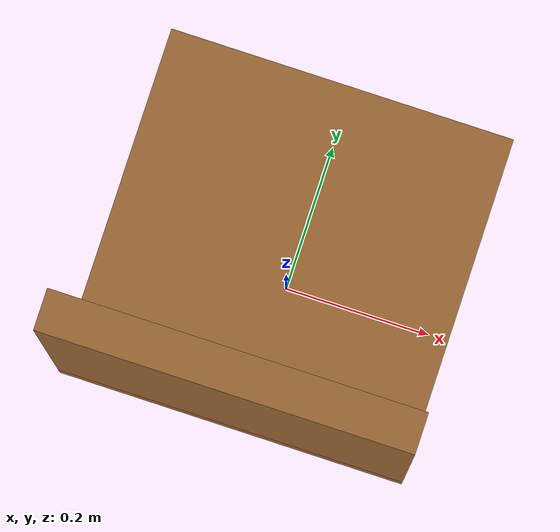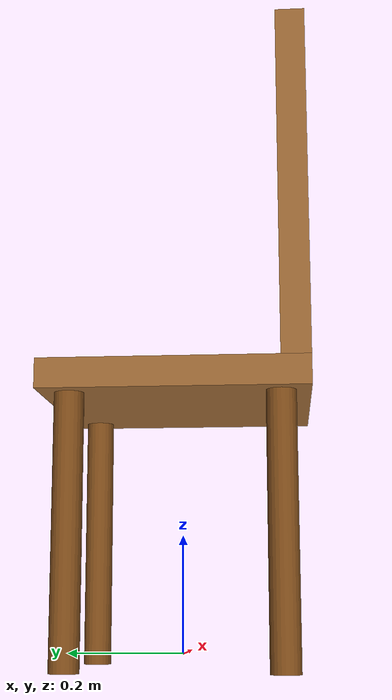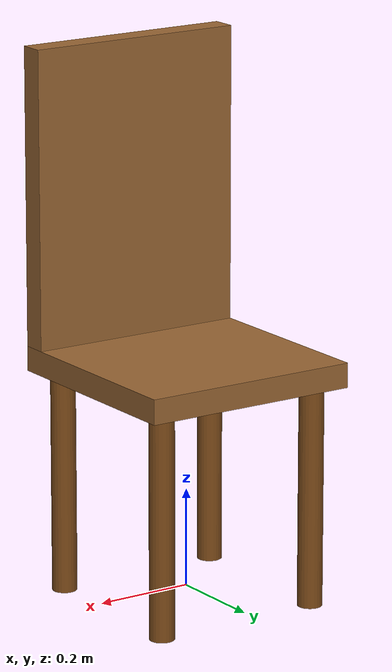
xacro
<?xml version="1.0"?>
<robot xmlns:xacro="http://www.ros.org/wiki/xacro" name="chair">

  <!-- CHANGE ONLY THIS VALUE TO SCALE ENTIRE CHAIR! -->
  <xacro:arg name="scale" default="1.0"/>
  <xacro:property name="scale" value="$(arg scale)"/>

  <!-- Base dimensions that will be scaled -->
  <xacro:property name="base_seat_size" value="0.45"/>
  <xacro:property name="base_seat_height" value="0.45"/>
  <xacro:property name="base_seat_thickness" value="0.05"/>
  <xacro:property name="base_backrest_width" value="0.45"/>
  <xacro:property name="base_backrest_height" value="0.6"/>
  <xacro:property name="base_backrest_thickness" value="0.05"/>
  <xacro:property name="base_backrest_offset" value="-0.2"/>
  <xacro:property name="base_backrest_center_height" value="0.75"/>
  <xacro:property name="base_leg_radius" value="0.025"/>
  <xacro:property name="base_leg_length" value="0.45"/>
  <xacro:property name="base_leg_offset" value="0.175"/>
  <xacro:property name="base_leg_center_height" value="0.225"/>
  <xacro:property name="base_seat_mass" value="5.0"/>
  <xacro:property name="base_backrest_mass" value="3.0"/>
  <xacro:property name="base_leg_mass" value="1.0"/>

  <!-- Calculated scaled dimensions -->
  <xacro:property name="seat_size" value="${base_seat_size * scale}"/>
  <xacro:property name="seat_height" value="${base_seat_height * scale}"/>
  <xacro:property name="seat_thickness" value="${base_seat_thickness * scale}"/>
  <xacro:property name="backrest_width" value="${base_backrest_width * scale}"/>
  <xacro:property name="backrest_height" value="${base_backrest_height * scale}"/>
  <xacro:property name="backrest_thickness" value="${base_backrest_thickness * scale}"/>
  <xacro:property name="backrest_offset" value="${base_backrest_offset * scale}"/>
  <xacro:property name="backrest_center_height" value="${base_backrest_center_height * scale}"/>
  <xacro:property name="leg_radius" value="${base_leg_radius * scale}"/>
  <xacro:property name="leg_length" value="${base_leg_length * scale}"/>
  <xacro:property name="leg_offset" value="${base_leg_offset * scale}"/>
  <xacro:property name="leg_center_height" value="${base_leg_center_height * scale}"/>
  <xacro:property name="seat_mass" value="${base_seat_mass * scale * scale * scale}"/>
  <xacro:property name="backrest_mass" value="${base_backrest_mass * scale * scale * scale}"/>
  <xacro:property name="leg_mass" value="${base_leg_mass * scale * scale * scale}"/>

  <!-- Chair Seat Link -->
  <link name="seat">
    <visual>
      <origin xyz="0 0 0" rpy="0 0 0"/>
      <geometry>
        <box size="${seat_size} ${seat_size} ${seat_thickness}"/>
      </geometry>
      <material name="wood">
        <color rgba="0.6 0.4 0.2 1"/>
      </material>
    </visual>
    <collision>
      <origin xyz="0 0 0" rpy="0 0 0"/>
      <geometry>
        <box size="${seat_size} ${seat_size} ${seat_thickness}"/>
      </geometry>
    </collision>
    <inertial>
      <mass value="${seat_mass}"/>
      <origin xyz="0 0 0" rpy="0 0 0"/>
      <inertia ixx="${0.083 * scale}" ixy="0.0" ixz="0.0"
               iyy="${0.083 * scale}" iyz="0.0"
               izz="${0.083 * scale}"/>
    </inertial>
  </link>

  <!-- Chair Backrest Link -->
  <link name="backrest">
    <visual>
      <origin xyz="0 0 0" rpy="0 0 0"/>
      <geometry>
        <box size="${backrest_width} ${backrest_thickness} ${backrest_height}"/>
      </geometry>
      <material name="wood">
        <color rgba="0.6 0.4 0.2 1"/>
      </material>
    </visual>
    <collision>
      <origin xyz="0 0 0" rpy="0 0 0"/>
      <geometry>
        <box size="${backrest_width} ${backrest_thickness} ${backrest_height}"/>
      </geometry>
    </collision>
    <inertial>
      <mass value="${backrest_mass}"/>
      <origin xyz="0 0 0" rpy="0 0 0"/>
      <inertia ixx="${0.25 * scale}" ixy="0.0" ixz="0.0"
               iyy="${0.05 * scale}" iyz="0.0"
               izz="${0.25 * scale}"/>
    </inertial>
  </link>

  <!-- Leg Macro for reusability -->
  <xacro:macro name="leg" params="name x y">
    <link name="${name}">
      <visual>
        <origin xyz="0 0 0" rpy="0 0 0"/>
        <geometry>
          <cylinder radius="${leg_radius}" length="${leg_length}"/>
        </geometry>
        <material name="dark_wood">
          <color rgba="0.5 0.3 0.1 1"/>
        </material>
      </visual>
      <collision>
        <origin xyz="0 0 0" rpy="0 0 0"/>
        <geometry>
          <cylinder radius="${leg_radius}" length="${leg_length}"/>
        </geometry>
      </collision>
      <inertial>
        <mass value="${leg_mass}"/>
        <origin xyz="0 0 0" rpy="0 0 0"/>
        <inertia ixx="${0.015 * scale}" ixy="0.0" ixz="0.0"
                 iyy="${0.015 * scale}" iyz="0.0"
                 izz="${0.001 * scale}"/>
      </inertial>
    </link>

    <!-- Joint connecting leg to seat -->
    <joint name="seat_to_${name}" type="fixed">
      <parent link="seat"/>
      <child link="${name}"/>
      <origin xyz="${x} ${y} ${-seat_thickness/2 - leg_length/2}" rpy="0 0 0"/>
    </joint>
  </xacro:macro>

  <!-- Create all four legs using the macro -->
  <xacro:leg name="front_left_leg" x="${leg_offset}" y="${leg_offset}"/>
  <xacro:leg name="front_right_leg" x="${-leg_offset}" y="${leg_offset}"/>
  <xacro:leg name="back_left_leg" x="${leg_offset}" y="${-leg_offset}"/>
  <xacro:leg name="back_right_leg" x="${-leg_offset}" y="${-leg_offset}"/>

  <!-- Joint connecting backrest to seat -->
  <joint name="seat_to_backrest" type="fixed">
    <parent link="seat"/>
    <child link="backrest"/>
    <origin xyz="0 ${backrest_offset} ${seat_thickness/2 + backrest_height/2}" rpy="0 0 0"/>
  </joint>

  <!-- Base link (required by some systems) -->
  <link name="base_link"/>

  <!-- Joint connecting base to seat -->
  <joint name="base_to_seat" type="fixed">
    <parent link="base_link"/>
    <child link="seat"/>
    <origin xyz="0 0 ${seat_height}" rpy="0 0 0"/>
  </joint>

</robot>
